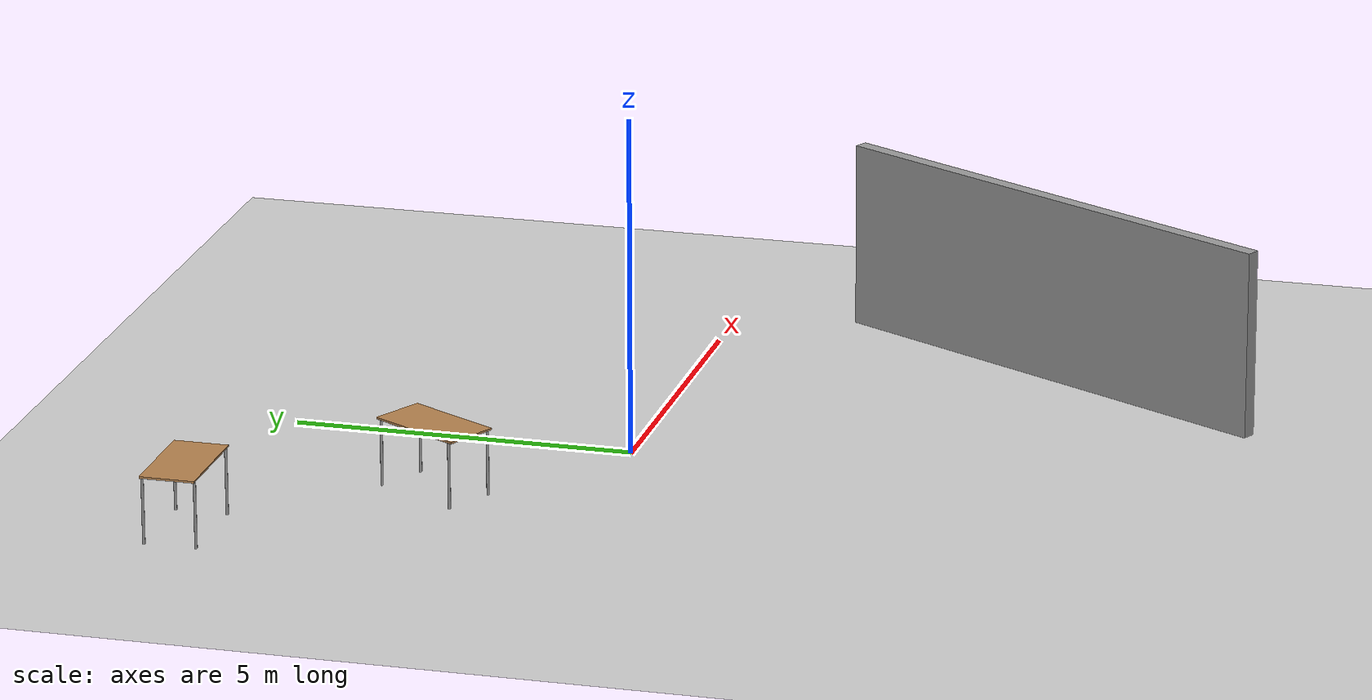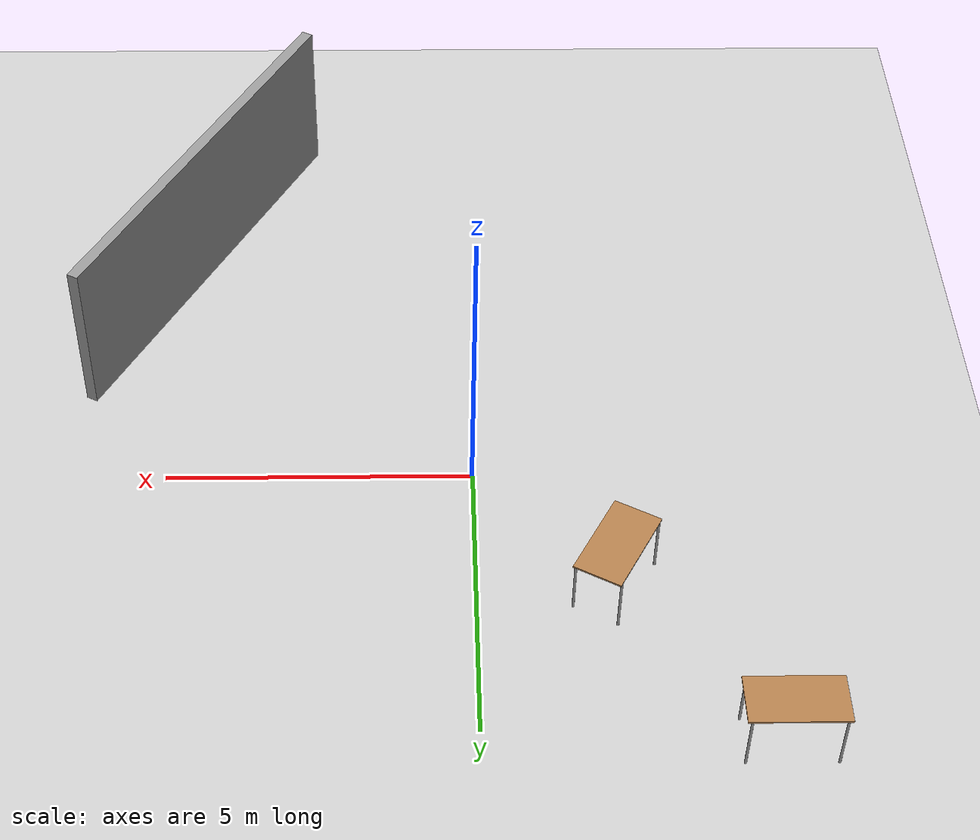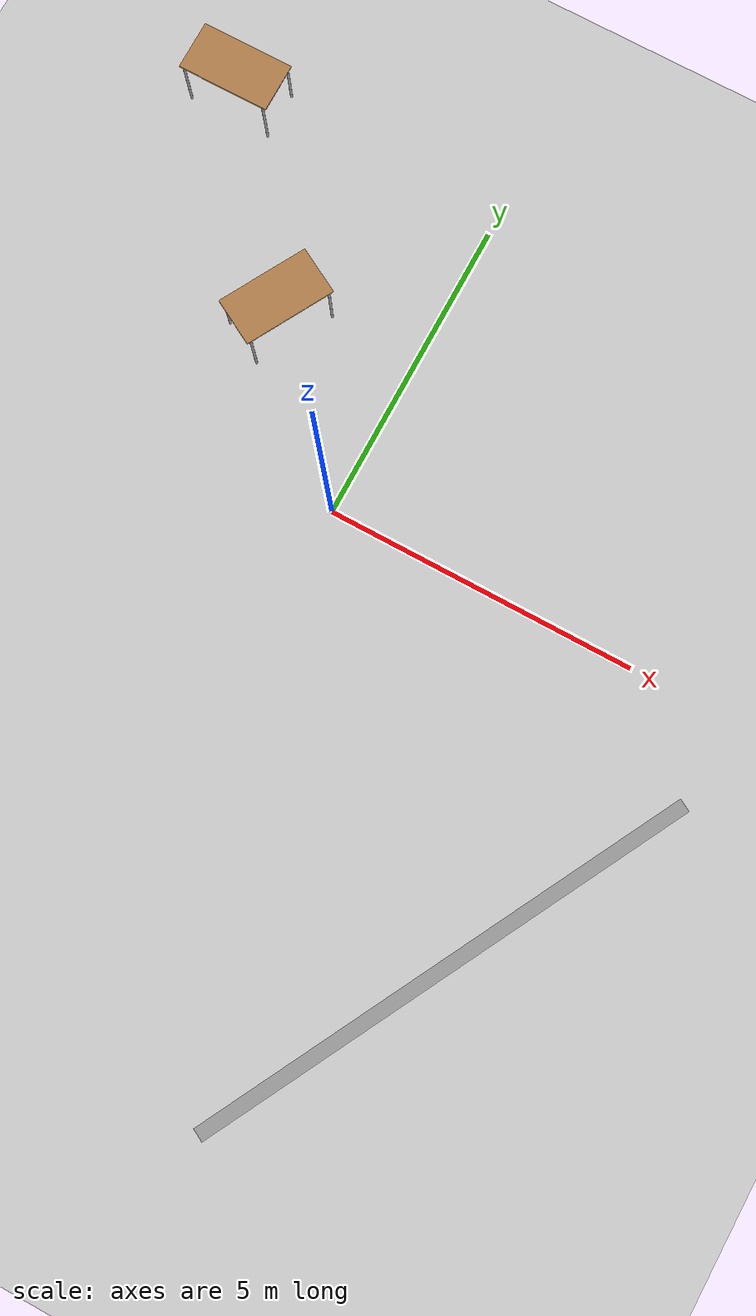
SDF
<sdf version="1.6">
 <world name="default">
  <light name="sun" type="directional">
   <pose>0 0 10 0 -0 0</pose>
   <diffuse>0.8 0.8 0.8 1</diffuse>
   <specular>0.2 0.2 0.2 1</specular>
   <attenuation>
    <range>1000</range>
    <constant>0.9</constant>
    <linear>0.01</linear>
    <quadratic>0.001</quadratic>
   </attenuation>
   <direction>-0.5 0.1 -0.9</direction>
  </light>
  <model name="ground_plane">
   <static>1</static>
   <link name="link">
    <collision name="collision">
     <geometry><plane><normal>0 0 1</normal><size>100 100</size></plane></geometry>
     <surface><friction><ode><mu>100</mu><mu2>50</mu2></ode></friction></surface>
    </collision>
    <visual name="visual">
     <cast_shadows>0</cast_shadows>
     <geometry><plane><normal>0 0 1</normal><size>100 100</size></plane></geometry>
     <material>
      <script><uri>file://media/materials/scripts/gazebo.material</uri><name>Gazebo/Grey</name></script>
     </material>
    </visual>
   </link>
  </model>
  <gravity>0 0 -9.8</gravity>
  <magnetic_field>6e-06 2.3e-05 -4.2e-05</magnetic_field>
  <atmosphere type="adiabatic"/>
  <physics name="default_physics" default="0" type="ode">
   <max_step_size>0.001</max_step_size>
   <real_time_factor>1</real_time_factor>
   <real_time_update_rate>1000</real_time_update_rate>
  </physics>
  <scene><ambient>0.4 0.4 0.4 1</ambient><background>0.7 0.7 0.7 1</background><shadows>1</shadows></scene>
  <spherical_coordinates>
   <surface_model>EARTH_WGS84</surface_model>
   <latitude_deg>0</latitude_deg>
   <longitude_deg>0</longitude_deg>
   <elevation>0</elevation>
   <heading_deg>0</heading_deg>
  </spherical_coordinates>
  <model name="grey_wall">
   <static>1</static>
   <link name="link">
    <pose>0 0 1.4 0 -0 0</pose>
    <collision name="collision"><geometry><box><size>7.5 0.2 2.8</size></box></geometry></collision>
    <visual name="visual">
     <cast_shadows>0</cast_shadows>
     <geometry><box><size>7.5 0.2 2.8</size></box></geometry>
     <material>
      <script>
       <uri>model://grey_wall/materials/scripts</uri>
       <uri>model://grey_wall/materials/textures</uri>
       <name>vrc/grey_wall</name>
      </script>
     </material>
    </visual>
   </link>
   <pose>4.64092 -5.1421 0 0 -0 1.08028</pose>
  </model>
  <model name="table">
   <static>1</static>
   <link name="link">
    <collision name="surface">
     <pose>0 0 1 0 -0 0</pose>
     <geometry><box><size>1.5 0.8 0.03</size></box></geometry>
     <surface><friction><ode><mu>0.6</mu><mu2>0.6</mu2></ode></friction></surface>
    </collision>
    <visual name="visual1">
     <pose>0 0 1 0 -0 0</pose>
     <geometry><box><size>1.5 0.8 0.03</size></box></geometry>
     <material>
      <script><uri>file://media/materials/scripts/gazebo.material</uri><name>Gazebo/Wood</name></script>
     </material>
    </visual>
    <collision name="front_left_leg">
     <pose>0.68 0.38 0.5 0 -0 0</pose>
     <geometry><cylinder><radius>0.02</radius><length>1</length></cylinder></geometry>
    </collision>
    <visual name="front_left_leg">
     <pose>0.68 0.38 0.5 0 -0 0</pose>
     <geometry><cylinder><radius>0.02</radius><length>1</length></cylinder></geometry>
     <material>
      <script><uri>file://media/materials/scripts/gazebo.material</uri><name>Gazebo/Grey</name></script>
     </material>
    </visual>
    <collision name="front_right_leg">
     <pose>0.68 -0.38 0.5 0 -0 0</pose>
     <geometry><cylinder><radius>0.02</radius><length>1</length></cylinder></geometry>
    </collision>
    <visual name="front_right_leg">
     <pose>0.68 -0.38 0.5 0 -0 0</pose>
     <geometry><cylinder><radius>0.02</radius><length>1</length></cylinder></geometry>
     <material>
      <script><uri>file://media/materials/scripts/gazebo.material</uri><name>Gazebo/Grey</name></script>
     </material>
    </visual>
    <collision name="back_right_leg">
     <pose>-0.68 -0.38 0.5 0 -0 0</pose>
     <geometry><cylinder><radius>0.02</radius><length>1</length></cylinder></geometry>
    </collision>
    <visual name="back_right_leg">
     <pose>-0.68 -0.38 0.5 0 -0 0</pose>
     <geometry><cylinder><radius>0.02</radius><length>1</length></cylinder></geometry>
     <material>
      <script><uri>file://media/materials/scripts/gazebo.material</uri><name>Gazebo/Grey</name></script>
     </material>
    </visual>
    <collision name="back_left_leg">
     <pose>-0.68 0.38 0.5 0 -0 0</pose>
     <geometry><cylinder><radius>0.02</radius><length>1</length></cylinder></geometry>
    </collision>
    <visual name="back_left_leg">
     <pose>-0.68 0.38 0.5 0 -0 0</pose>
     <geometry><cylinder><radius>0.02</radius><length>1</length></cylinder></geometry>
     <material>
      <script><uri>file://media/materials/scripts/gazebo.material</uri><name>Gazebo/Grey</name></script>
     </material>
    </visual>
   </link>
   <pose>-4.48801 5.19284 0 0 -0 0</pose>
  </model>
  <model name="table_0">
   <static>1</static>
   <link name="link">
    <collision name="surface">
     <pose>0 0 1 0 -0 0</pose>
     <geometry><box><size>1.5 0.8 0.03</size></box></geometry>
     <surface><friction><ode><mu>0.6</mu><mu2>0.6</mu2></ode></friction></surface>
    </collision>
    <visual name="visual1">
     <pose>0 0 1 0 -0 0</pose>
     <geometry><box><size>1.5 0.8 0.03</size></box></geometry>
     <material>
      <script><uri>file://media/materials/scripts/gazebo.material</uri><name>Gazebo/Wood</name></script>
     </material>
    </visual>
    <collision name="front_left_leg">
     <pose>0.68 0.38 0.5 0 -0 0</pose>
     <geometry><cylinder><radius>0.02</radius><length>1</length></cylinder></geometry>
    </collision>
    <visual name="front_left_leg">
     <pose>0.68 0.38 0.5 0 -0 0</pose>
     <geometry><cylinder><radius>0.02</radius><length>1</length></cylinder></geometry>
     <material>
      <script><uri>file://media/materials/scripts/gazebo.material</uri><name>Gazebo/Grey</name></script>
     </material>
    </visual>
    <collision name="front_right_leg">
     <pose>0.68 -0.38 0.5 0 -0 0</pose>
     <geometry><cylinder><radius>0.02</radius><length>1</length></cylinder></geometry>
    </collision>
    <visual name="front_right_leg">
     <pose>0.68 -0.38 0.5 0 -0 0</pose>
     <geometry><cylinder><radius>0.02</radius><length>1</length></cylinder></geometry>
     <material>
      <script><uri>file://media/materials/scripts/gazebo.material</uri><name>Gazebo/Grey</name></script>
     </material>
    </visual>
    <collision name="back_right_leg">
     <pose>-0.68 -0.38 0.5 0 -0 0</pose>
     <geometry><cylinder><radius>0.02</radius><length>1</length></cylinder></geometry>
    </collision>
    <visual name="back_right_leg">
     <pose>-0.68 -0.38 0.5 0 -0 0</pose>
     <geometry><cylinder><radius>0.02</radius><length>1</length></cylinder></geometry>
     <material>
      <script><uri>file://media/materials/scripts/gazebo.material</uri><name>Gazebo/Grey</name></script>
     </material>
    </visual>
    <collision name="back_left_leg">
     <pose>-0.68 0.38 0.5 0 -0 0</pose>
     <geometry><cylinder><radius>0.02</radius><length>1</length></cylinder></geometry>
    </collision>
    <visual name="back_left_leg">
     <pose>-0.68 0.38 0.5 0 -0 0</pose>
     <geometry><cylinder><radius>0.02</radius><length>1</length></cylinder></geometry>
     <material>
      <script><uri>file://media/materials/scripts/gazebo.material</uri><name>Gazebo/Grey</name></script>
     </material>
    </visual>
   </link>
   <pose>-2.153 2.28016 0 0 -0 1.06592</pose>
  </model>
 </world>
</sdf>
